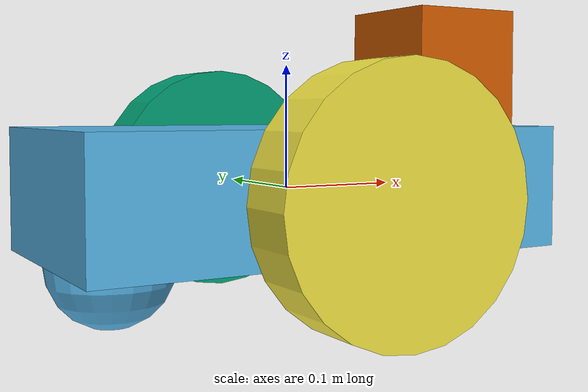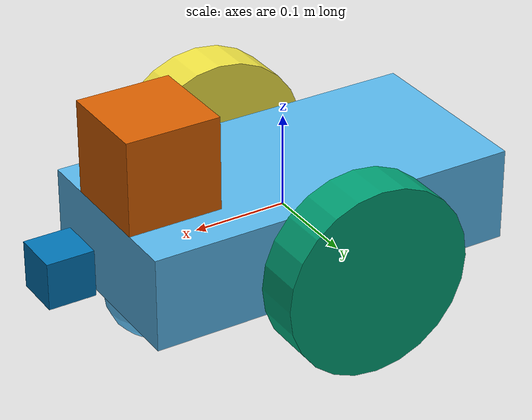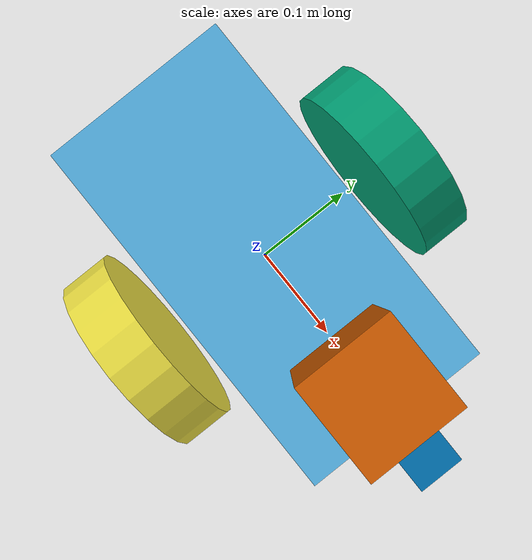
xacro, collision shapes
<?xml version='1.0'?>

<robot name="my_bot" xmlns:xacro="http://www.ros.org/wiki/xacro">
<xacro:include filename="$(find my_bot)/urdf/my_bot.gazebo" />
  <link name="robot_footprint"></link>

  <joint name="robot_footprint_joint" type="fixed">
    <origin xyz="0 0 0" rpy="0 0 0" />
    <parent link="robot_footprint"/>
    <child link="chassis" />
  </joint>

  <link name='chassis'>
    <pose>0 0 0.1 0 0 0</pose>

    <inertial>
      <mass value="15.0"/>
      <origin xyz="0.0 0 0" rpy=" 0 0 0"/>
      <inertia
          ixx="0.1" ixy="0" ixz="0"
          iyy="0.1" iyz="0"
          izz="0.1"
      />
    </inertial>

    <collision name='collision'>
      <origin xyz="0 0 0" rpy=" 0 0 0"/>
      <geometry>
        <box size=".4 .2 .1"/>
      </geometry>
    </collision>

    <visual name='chassis_visual'>
      <origin xyz="0 0 0" rpy=" 0 0 0"/>
      <geometry>
        <box size=".4 .2 .1"/>
      </geometry>
    </visual>

    <collision name='back_caster_collision'>
      <origin xyz="-0.15 0 -0.05" rpy=" 0 0 0"/>
      <geometry>
        <sphere radius="0.0499"/>
      </geometry>
    </collision>

    <visual name='back_caster_visual'>
      <origin xyz="-0.15 0 -0.05" rpy=" 0 0 0"/>
      <geometry>
        <sphere radius="0.05"/>
      </geometry>
    </visual>

    <collision name='front_caster_collision'>
      <origin xyz="0.15 0 -0.05" rpy=" 0 0 0"/>
      <geometry>
        <sphere radius="0.0499"/>
      </geometry>
    </collision>

    <visual name='front_caster_visual'>
      <origin xyz="0.15 0 -0.05" rpy=" 0 0 0"/>
      <geometry>
        <sphere radius="0.05"/>
      </geometry>
    </visual>

  </link>

  <link name="left_wheel">
     <visual name='left_wheel_visual'>
        <geometry>
            <cylinder length="0.05" radius="0.1"/>
        </geometry>
        <origin xyz="0 0 0" rpy="0 1.5707 1.5707"/>
    </visual>

    <collision name='collision'>
        <geometry>
            <cylinder length="0.05" radius="0.1"/>
        </geometry>
        <origin xyz="0 0 0" rpy="0 1.5707 1.5707"/>
    </collision>

    <inertial>
        <origin xyz="0 0 0" rpy="0 1.5707 1.5707"/>
        <mass  value="5"/>
        <inertia
          ixx="0.1" ixy="0" ixz="0"
          iyy="0.1" iyz="0"
          izz="0.1"
        />
    </inertial>
  </link>

    <link name="right_wheel">
    <pose>0 0 0.1 0 0 0</pose>
    <visual name='right_wheel_visual'>
        <geometry>
            <cylinder length="0.05" radius="0.1"/>
        </geometry>
        <origin xyz="0 0 0" rpy="0 1.5707 1.5707"/>
    </visual>

    <collision name='collision'>
        <geometry>
            <cylinder length="0.05" radius="0.1"/>
        </geometry>
        <origin xyz="0 0 0" rpy="0 1.5707 1.5707"/>
    </collision>

    <inertial>
        <origin xyz="0 0 0" rpy="0 1.5707 1.5707"/>
        <mass  value="5.0"/>
        <inertia
          ixx="0.1" ixy="0" ixz="0"
          iyy="0.1" iyz="0"
          izz="0.1"
        />
    </inertial>
  </link>

<joint type="continuous" name="left_wheel_hinge">
    <origin xyz="0 0.15 0" rpy="0 0 0"/>
    <child link="left_wheel"/>
    <parent link="chassis"/>
    <axis xyz="0 1 0" rpy="0 0 0"/>
    <limit effort="10000" velocity="1000"/>
    <dynamics damping="1.0" friction="1.0"/>
  </joint>

<joint type="continuous" name="right_wheel_hinge">
    <origin xyz="0 -0.15 0" rpy="0 0 0"/>
    <child link="right_wheel"/>
    <parent link="chassis"/>
    <axis xyz="0 1 0" rpy="0 0 0"/>
    <limit effort="10000" velocity="1000"/>
    <dynamics damping="1.0" friction="1.0"/>
  </joint>

    <link name="camera">
    <pose>0 0 0.1 0 0 0</pose>

    <visual>
        <geometry>
          <mesh filename="package://my_bot/meshes/kinect.dae"/>
        </geometry>
        <origin xyz="0 0 0" rpy="0 0 0"/>
    </visual>

    <collision>
        <geometry>
            <box size="0.05 0.05 0.05"/>
        </geometry>
        <origin xyz="0 0 0" rpy="0 0 0"/>
    </collision>

    <inertial>
        <origin xyz="0 0 0" rpy="0 0 0"/>
        <mass  value="0.1"/>
        <inertia
          ixx="0.000001" ixy="0" ixz="0"
          iyy="0.000001" iyz="0"
          izz="0.000001"
        />
    </inertial>
  </link>

  <joint type="fixed" name="camera_joint">
    <origin xyz="0.25 0 0.005" rpy="0 0 0"/>
    <child link="camera"/>
    <parent link="chassis"/>
    <axis xyz="0 1 0" rpy="0 0 0"/>
  </joint>

 <link name="hokuyo">
 <pose>0 0 0 0 0 0</pose>
    <visual>
        <origin xyz="0 0 0" rpy="0 0 0"/>
        <geometry>
          <mesh filename="package://my_bot/meshes/hokuyo.dae"/>
        </geometry>
    </visual>

    <collision>
        <geometry>
            <box size="0.1 0.1 0.1"/>
        </geometry>
        <origin xyz="0 0 0" rpy="0 0 0"/>
    </collision>

    <inertial>
      <origin xyz="0.0 0 0" rpy=" 0 0 0"/>
      <mass  value="0.1"/>
      <inertia
          ixx="0.000001" ixy="0" ixz="0"
          iyy="0.000001" iyz="0"
          izz="0.000001"
        />
    </inertial>
  </link>

  <joint type="fixed" name="hokuyo_joint">
    <origin xyz="0.15 0 0.1" rpy="0 0 0"/>
    <child link="hokuyo"/>
    <parent link="chassis"/>
    <axis xyz="0 1 0" rpy="0 0 0"/>
  </joint>

</robot>
